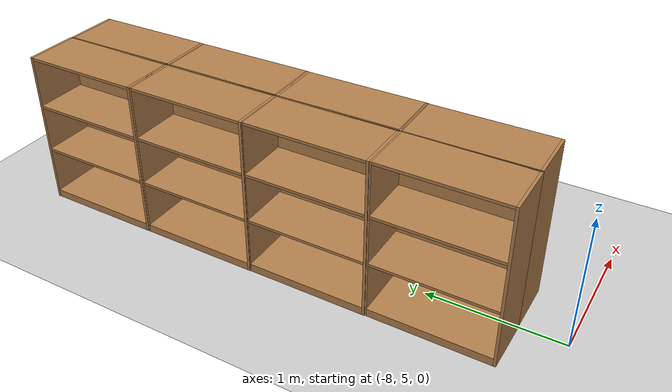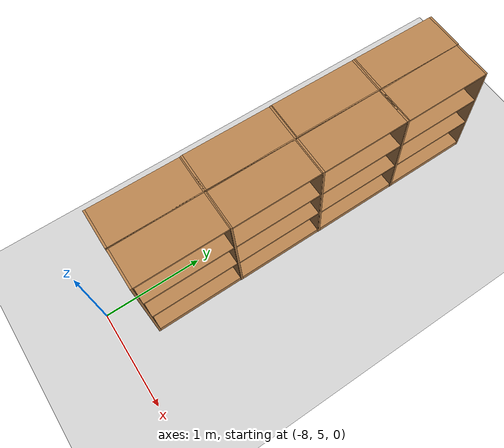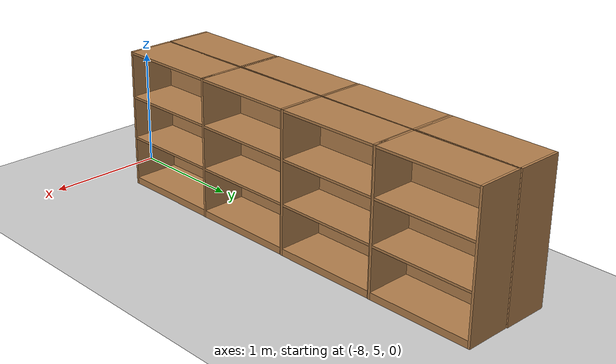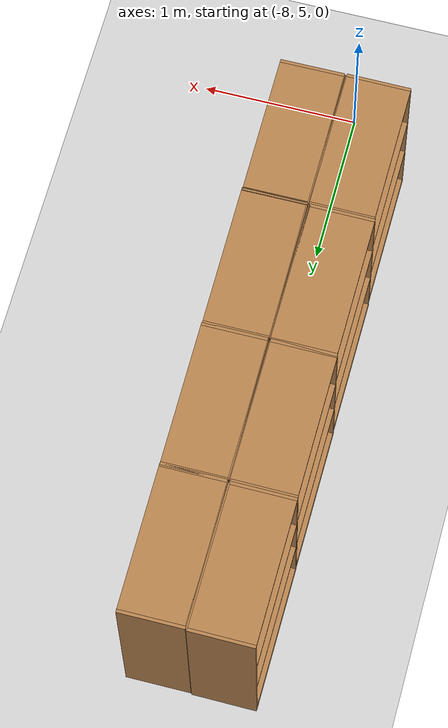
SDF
<sdf version="1.7">
 <world name="library_world">
  <model name="ground_plane">
   <static>1</static>
   <link name="link">
    <collision name="collision">
     <geometry><plane><normal>0 0 1</normal><size>100 100</size></plane></geometry>
     <surface>
      <contact><collide_bitmask>65535</collide_bitmask></contact>
      <friction><ode><mu>100</mu><mu2>50</mu2></ode></friction>
     </surface>
    </collision>
    <visual name="visual">
     <cast_shadows>0</cast_shadows>
     <geometry><plane><normal>0 0 1</normal><size>100 100</size></plane></geometry>
     <material>
      <script><uri>file://media/materials/scripts/gazebo.material</uri><name>Gazebo/Grey</name></script>
     </material>
    </visual>
   </link>
  </model>
  <model name="bookshelf_0_clone_2_clone">
   <static>1</static>
   <link name="link">
    <inertial><mass>1</mass></inertial>
    <collision name="back">
     <pose>0 0.005 0.6 0 -0 0</pose>
     <geometry><box><size>0.9 0.01 1.2</size></box></geometry>
    </collision>
    <visual name="visual1">
     <pose>0 0.005 0.6 0 -0 0</pose>
     <geometry><box><size>0.9 0.01 1.2</size></box></geometry>
     <material>
      <script><uri>file://media/materials/scripts/gazebo.material</uri><name>Gazebo/Wood</name></script>
     </material>
    </visual>
    <collision name="left_side">
     <pose>0.45 -0.195 0.6 0 -0 0</pose>
     <geometry><box><size>0.02 0.4 1.2</size></box></geometry>
    </collision>
    <visual name="visual2">
     <pose>0.45 -0.195 0.6 0 -0 0</pose>
     <geometry><box><size>0.02 0.4 1.2</size></box></geometry>
     <material>
      <script><uri>file://media/materials/scripts/gazebo.material</uri><name>Gazebo/Wood</name></script>
     </material>
    </visual>
    <collision name="right_side">
     <pose>-0.45 -0.195 0.6 0 -0 0</pose>
     <geometry><box><size>0.02 0.4 1.2</size></box></geometry>
    </collision>
    <visual name="visual3">
     <pose>-0.45 -0.195 0.6 0 -0 0</pose>
     <geometry><box><size>0.02 0.4 1.2</size></box></geometry>
     <material>
      <script><uri>file://media/materials/scripts/gazebo.material</uri><name>Gazebo/Wood</name></script>
     </material>
    </visual>
    <collision name="bottom">
     <pose>0 -0.195 0.03 0 -0 0</pose>
     <geometry><box><size>0.88 0.4 0.06</size></box></geometry>
    </collision>
    <visual name="visual4">
     <pose>0 -0.195 0.03 0 -0 0</pose>
     <geometry><box><size>0.88 0.4 0.06</size></box></geometry>
     <material>
      <script><uri>file://media/materials/scripts/gazebo.material</uri><name>Gazebo/Wood</name></script>
     </material>
    </visual>
    <collision name="top">
     <pose>0 -0.195 1.19 0 -0 0</pose>
     <geometry><box><size>0.88 0.4 0.02</size></box></geometry>
    </collision>
    <visual name="visual5">
     <pose>0 -0.195 1.19 0 -0 0</pose>
     <geometry><box><size>0.88 0.4 0.02</size></box></geometry>
     <material>
      <script><uri>file://media/materials/scripts/gazebo.material</uri><name>Gazebo/Wood</name></script>
     </material>
    </visual>
    <collision name="low_shelf">
     <pose>0 -0.195 0.43 0 -0 0</pose>
     <geometry><box><size>0.88 0.4 0.02</size></box></geometry>
    </collision>
    <visual name="visual6">
     <pose>0 -0.195 0.43 0 -0 0</pose>
     <geometry><box><size>0.88 0.4 0.02</size></box></geometry>
     <material>
      <script><uri>file://media/materials/scripts/gazebo.material</uri><name>Gazebo/Wood</name></script>
     </material>
    </visual>
    <collision name="high_shelf">
     <pose>0 -0.195 0.8 0 -0 0</pose>
     <geometry><box><size>0.88 0.4 0.02</size></box></geometry>
    </collision>
    <visual name="visual7">
     <pose>0 -0.195 0.8 0 -0 0</pose>
     <geometry><box><size>0.88 0.4 0.02</size></box></geometry>
     <material>
      <script><uri>file://media/materials/scripts/gazebo.material</uri><name>Gazebo/Wood</name></script>
     </material>
    </visual>
   </link>
   <pose>-7.9828 8.52336 0 0 -0 1.57381</pose>
  </model>
  <model name="bookshelf_0_clone_2_clone_0">
   <static>1</static>
   <link name="link">
    <inertial><mass>1</mass></inertial>
    <collision name="back">
     <pose>0 0.005 0.6 0 -0 0</pose>
     <geometry><box><size>0.9 0.01 1.2</size></box></geometry>
    </collision>
    <visual name="visual1">
     <pose>0 0.005 0.6 0 -0 0</pose>
     <geometry><box><size>0.9 0.01 1.2</size></box></geometry>
     <material>
      <script><uri>file://media/materials/scripts/gazebo.material</uri><name>Gazebo/Wood</name></script>
     </material>
    </visual>
    <collision name="left_side">
     <pose>0.45 -0.195 0.6 0 -0 0</pose>
     <geometry><box><size>0.02 0.4 1.2</size></box></geometry>
    </collision>
    <visual name="visual2">
     <pose>0.45 -0.195 0.6 0 -0 0</pose>
     <geometry><box><size>0.02 0.4 1.2</size></box></geometry>
     <material>
      <script><uri>file://media/materials/scripts/gazebo.material</uri><name>Gazebo/Wood</name></script>
     </material>
    </visual>
    <collision name="right_side">
     <pose>-0.45 -0.195 0.6 0 -0 0</pose>
     <geometry><box><size>0.02 0.4 1.2</size></box></geometry>
    </collision>
    <visual name="visual3">
     <pose>-0.45 -0.195 0.6 0 -0 0</pose>
     <geometry><box><size>0.02 0.4 1.2</size></box></geometry>
     <material>
      <script><uri>file://media/materials/scripts/gazebo.material</uri><name>Gazebo/Wood</name></script>
     </material>
    </visual>
    <collision name="bottom">
     <pose>0 -0.195 0.03 0 -0 0</pose>
     <geometry><box><size>0.88 0.4 0.06</size></box></geometry>
    </collision>
    <visual name="visual4">
     <pose>0 -0.195 0.03 0 -0 0</pose>
     <geometry><box><size>0.88 0.4 0.06</size></box></geometry>
     <material>
      <script><uri>file://media/materials/scripts/gazebo.material</uri><name>Gazebo/Wood</name></script>
     </material>
    </visual>
    <collision name="top">
     <pose>0 -0.195 1.19 0 -0 0</pose>
     <geometry><box><size>0.88 0.4 0.02</size></box></geometry>
    </collision>
    <visual name="visual5">
     <pose>0 -0.195 1.19 0 -0 0</pose>
     <geometry><box><size>0.88 0.4 0.02</size></box></geometry>
     <material>
      <script><uri>file://media/materials/scripts/gazebo.material</uri><name>Gazebo/Wood</name></script>
     </material>
    </visual>
    <collision name="low_shelf">
     <pose>0 -0.195 0.43 0 -0 0</pose>
     <geometry><box><size>0.88 0.4 0.02</size></box></geometry>
    </collision>
    <visual name="visual6">
     <pose>0 -0.195 0.43 0 -0 0</pose>
     <geometry><box><size>0.88 0.4 0.02</size></box></geometry>
     <material>
      <script><uri>file://media/materials/scripts/gazebo.material</uri><name>Gazebo/Wood</name></script>
     </material>
    </visual>
    <collision name="high_shelf">
     <pose>0 -0.195 0.8 0 -0 0</pose>
     <geometry><box><size>0.88 0.4 0.02</size></box></geometry>
    </collision>
    <visual name="visual7">
     <pose>0 -0.195 0.8 0 -0 0</pose>
     <geometry><box><size>0.88 0.4 0.02</size></box></geometry>
     <material>
      <script><uri>file://media/materials/scripts/gazebo.material</uri><name>Gazebo/Wood</name></script>
     </material>
    </visual>
   </link>
   <pose>-7.9819 7.61403 0 0 -0 1.57381</pose>
  </model>
  <model name="bookshelf_0_clone_2_clone_1">
   <static>1</static>
   <link name="link">
    <inertial><mass>1</mass></inertial>
    <collision name="back">
     <pose>0 0.005 0.6 0 -0 0</pose>
     <geometry><box><size>0.9 0.01 1.2</size></box></geometry>
    </collision>
    <visual name="visual1">
     <pose>0 0.005 0.6 0 -0 0</pose>
     <geometry><box><size>0.9 0.01 1.2</size></box></geometry>
     <material>
      <script><uri>file://media/materials/scripts/gazebo.material</uri><name>Gazebo/Wood</name></script>
     </material>
    </visual>
    <collision name="left_side">
     <pose>0.45 -0.195 0.6 0 -0 0</pose>
     <geometry><box><size>0.02 0.4 1.2</size></box></geometry>
    </collision>
    <visual name="visual2">
     <pose>0.45 -0.195 0.6 0 -0 0</pose>
     <geometry><box><size>0.02 0.4 1.2</size></box></geometry>
     <material>
      <script><uri>file://media/materials/scripts/gazebo.material</uri><name>Gazebo/Wood</name></script>
     </material>
    </visual>
    <collision name="right_side">
     <pose>-0.45 -0.195 0.6 0 -0 0</pose>
     <geometry><box><size>0.02 0.4 1.2</size></box></geometry>
    </collision>
    <visual name="visual3">
     <pose>-0.45 -0.195 0.6 0 -0 0</pose>
     <geometry><box><size>0.02 0.4 1.2</size></box></geometry>
     <material>
      <script><uri>file://media/materials/scripts/gazebo.material</uri><name>Gazebo/Wood</name></script>
     </material>
    </visual>
    <collision name="bottom">
     <pose>0 -0.195 0.03 0 -0 0</pose>
     <geometry><box><size>0.88 0.4 0.06</size></box></geometry>
    </collision>
    <visual name="visual4">
     <pose>0 -0.195 0.03 0 -0 0</pose>
     <geometry><box><size>0.88 0.4 0.06</size></box></geometry>
     <material>
      <script><uri>file://media/materials/scripts/gazebo.material</uri><name>Gazebo/Wood</name></script>
     </material>
    </visual>
    <collision name="top">
     <pose>0 -0.195 1.19 0 -0 0</pose>
     <geometry><box><size>0.88 0.4 0.02</size></box></geometry>
    </collision>
    <visual name="visual5">
     <pose>0 -0.195 1.19 0 -0 0</pose>
     <geometry><box><size>0.88 0.4 0.02</size></box></geometry>
     <material>
      <script><uri>file://media/materials/scripts/gazebo.material</uri><name>Gazebo/Wood</name></script>
     </material>
    </visual>
    <collision name="low_shelf">
     <pose>0 -0.195 0.43 0 -0 0</pose>
     <geometry><box><size>0.88 0.4 0.02</size></box></geometry>
    </collision>
    <visual name="visual6">
     <pose>0 -0.195 0.43 0 -0 0</pose>
     <geometry><box><size>0.88 0.4 0.02</size></box></geometry>
     <material>
      <script><uri>file://media/materials/scripts/gazebo.material</uri><name>Gazebo/Wood</name></script>
     </material>
    </visual>
    <collision name="high_shelf">
     <pose>0 -0.195 0.8 0 -0 0</pose>
     <geometry><box><size>0.88 0.4 0.02</size></box></geometry>
    </collision>
    <visual name="visual7">
     <pose>0 -0.195 0.8 0 -0 0</pose>
     <geometry><box><size>0.88 0.4 0.02</size></box></geometry>
     <material>
      <script><uri>file://media/materials/scripts/gazebo.material</uri><name>Gazebo/Wood</name></script>
     </material>
    </visual>
   </link>
   <pose>-7.98238 6.70319 0 0 -0 1.57381</pose>
  </model>
  <model name="bookshelf_0_clone_2_clone_2">
   <static>1</static>
   <link name="link">
    <inertial><mass>1</mass></inertial>
    <collision name="back">
     <pose>0 0.005 0.6 0 -0 0</pose>
     <geometry><box><size>0.9 0.01 1.2</size></box></geometry>
    </collision>
    <visual name="visual1">
     <pose>0 0.005 0.6 0 -0 0</pose>
     <geometry><box><size>0.9 0.01 1.2</size></box></geometry>
     <material>
      <script><uri>file://media/materials/scripts/gazebo.material</uri><name>Gazebo/Wood</name></script>
     </material>
    </visual>
    <collision name="left_side">
     <pose>0.45 -0.195 0.6 0 -0 0</pose>
     <geometry><box><size>0.02 0.4 1.2</size></box></geometry>
    </collision>
    <visual name="visual2">
     <pose>0.45 -0.195 0.6 0 -0 0</pose>
     <geometry><box><size>0.02 0.4 1.2</size></box></geometry>
     <material>
      <script><uri>file://media/materials/scripts/gazebo.material</uri><name>Gazebo/Wood</name></script>
     </material>
    </visual>
    <collision name="right_side">
     <pose>-0.45 -0.195 0.6 0 -0 0</pose>
     <geometry><box><size>0.02 0.4 1.2</size></box></geometry>
    </collision>
    <visual name="visual3">
     <pose>-0.45 -0.195 0.6 0 -0 0</pose>
     <geometry><box><size>0.02 0.4 1.2</size></box></geometry>
     <material>
      <script><uri>file://media/materials/scripts/gazebo.material</uri><name>Gazebo/Wood</name></script>
     </material>
    </visual>
    <collision name="bottom">
     <pose>0 -0.195 0.03 0 -0 0</pose>
     <geometry><box><size>0.88 0.4 0.06</size></box></geometry>
    </collision>
    <visual name="visual4">
     <pose>0 -0.195 0.03 0 -0 0</pose>
     <geometry><box><size>0.88 0.4 0.06</size></box></geometry>
     <material>
      <script><uri>file://media/materials/scripts/gazebo.material</uri><name>Gazebo/Wood</name></script>
     </material>
    </visual>
    <collision name="top">
     <pose>0 -0.195 1.19 0 -0 0</pose>
     <geometry><box><size>0.88 0.4 0.02</size></box></geometry>
    </collision>
    <visual name="visual5">
     <pose>0 -0.195 1.19 0 -0 0</pose>
     <geometry><box><size>0.88 0.4 0.02</size></box></geometry>
     <material>
      <script><uri>file://media/materials/scripts/gazebo.material</uri><name>Gazebo/Wood</name></script>
     </material>
    </visual>
    <collision name="low_shelf">
     <pose>0 -0.195 0.43 0 -0 0</pose>
     <geometry><box><size>0.88 0.4 0.02</size></box></geometry>
    </collision>
    <visual name="visual6">
     <pose>0 -0.195 0.43 0 -0 0</pose>
     <geometry><box><size>0.88 0.4 0.02</size></box></geometry>
     <material>
      <script><uri>file://media/materials/scripts/gazebo.material</uri><name>Gazebo/Wood</name></script>
     </material>
    </visual>
    <collision name="high_shelf">
     <pose>0 -0.195 0.8 0 -0 0</pose>
     <geometry><box><size>0.88 0.4 0.02</size></box></geometry>
    </collision>
    <visual name="visual7">
     <pose>0 -0.195 0.8 0 -0 0</pose>
     <geometry><box><size>0.88 0.4 0.02</size></box></geometry>
     <material>
      <script><uri>file://media/materials/scripts/gazebo.material</uri><name>Gazebo/Wood</name></script>
     </material>
    </visual>
   </link>
   <pose>-7.9838 5.79924 0 0 -0 1.57381</pose>
  </model>
  <model name="bookshelf_0_clone_8_clone">
   <static>1</static>
   <link name="link">
    <inertial><mass>1</mass></inertial>
    <collision name="back">
     <pose>0 0.005 0.6 0 -0 0</pose>
     <geometry><box><size>0.9 0.01 1.2</size></box></geometry>
    </collision>
    <visual name="visual1">
     <pose>0 0.005 0.6 0 -0 0</pose>
     <geometry><box><size>0.9 0.01 1.2</size></box></geometry>
     <material>
      <script><uri>file://media/materials/scripts/gazebo.material</uri><name>Gazebo/Wood</name></script>
     </material>
    </visual>
    <collision name="left_side">
     <pose>0.45 -0.195 0.6 0 -0 0</pose>
     <geometry><box><size>0.02 0.4 1.2</size></box></geometry>
    </collision>
    <visual name="visual2">
     <pose>0.45 -0.195 0.6 0 -0 0</pose>
     <geometry><box><size>0.02 0.4 1.2</size></box></geometry>
     <material>
      <script><uri>file://media/materials/scripts/gazebo.material</uri><name>Gazebo/Wood</name></script>
     </material>
    </visual>
    <collision name="right_side">
     <pose>-0.45 -0.195 0.6 0 -0 0</pose>
     <geometry><box><size>0.02 0.4 1.2</size></box></geometry>
    </collision>
    <visual name="visual3">
     <pose>-0.45 -0.195 0.6 0 -0 0</pose>
     <geometry><box><size>0.02 0.4 1.2</size></box></geometry>
     <material>
      <script><uri>file://media/materials/scripts/gazebo.material</uri><name>Gazebo/Wood</name></script>
     </material>
    </visual>
    <collision name="bottom">
     <pose>0 -0.195 0.03 0 -0 0</pose>
     <geometry><box><size>0.88 0.4 0.06</size></box></geometry>
    </collision>
    <visual name="visual4">
     <pose>0 -0.195 0.03 0 -0 0</pose>
     <geometry><box><size>0.88 0.4 0.06</size></box></geometry>
     <material>
      <script><uri>file://media/materials/scripts/gazebo.material</uri><name>Gazebo/Wood</name></script>
     </material>
    </visual>
    <collision name="top">
     <pose>0 -0.195 1.19 0 -0 0</pose>
     <geometry><box><size>0.88 0.4 0.02</size></box></geometry>
    </collision>
    <visual name="visual5">
     <pose>0 -0.195 1.19 0 -0 0</pose>
     <geometry><box><size>0.88 0.4 0.02</size></box></geometry>
     <material>
      <script><uri>file://media/materials/scripts/gazebo.material</uri><name>Gazebo/Wood</name></script>
     </material>
    </visual>
    <collision name="low_shelf">
     <pose>0 -0.195 0.43 0 -0 0</pose>
     <geometry><box><size>0.88 0.4 0.02</size></box></geometry>
    </collision>
    <visual name="visual6">
     <pose>0 -0.195 0.43 0 -0 0</pose>
     <geometry><box><size>0.88 0.4 0.02</size></box></geometry>
     <material>
      <script><uri>file://media/materials/scripts/gazebo.material</uri><name>Gazebo/Wood</name></script>
     </material>
    </visual>
    <collision name="high_shelf">
     <pose>0 -0.195 0.8 0 -0 0</pose>
     <geometry><box><size>0.88 0.4 0.02</size></box></geometry>
    </collision>
    <visual name="visual7">
     <pose>0 -0.195 0.8 0 -0 0</pose>
     <geometry><box><size>0.88 0.4 0.02</size></box></geometry>
     <material>
      <script><uri>file://media/materials/scripts/gazebo.material</uri><name>Gazebo/Wood</name></script>
     </material>
    </visual>
   </link>
   <pose>-8.00188 8.53017 0 0 0 -1.57537</pose>
  </model>
  <model name="bookshelf_0_clone_8_clone_0">
   <static>1</static>
   <link name="link">
    <inertial><mass>1</mass></inertial>
    <collision name="back">
     <pose>0 0.005 0.6 0 -0 0</pose>
     <geometry><box><size>0.9 0.01 1.2</size></box></geometry>
    </collision>
    <visual name="visual1">
     <pose>0 0.005 0.6 0 -0 0</pose>
     <geometry><box><size>0.9 0.01 1.2</size></box></geometry>
     <material>
      <script><uri>file://media/materials/scripts/gazebo.material</uri><name>Gazebo/Wood</name></script>
     </material>
    </visual>
    <collision name="left_side">
     <pose>0.45 -0.195 0.6 0 -0 0</pose>
     <geometry><box><size>0.02 0.4 1.2</size></box></geometry>
    </collision>
    <visual name="visual2">
     <pose>0.45 -0.195 0.6 0 -0 0</pose>
     <geometry><box><size>0.02 0.4 1.2</size></box></geometry>
     <material>
      <script><uri>file://media/materials/scripts/gazebo.material</uri><name>Gazebo/Wood</name></script>
     </material>
    </visual>
    <collision name="right_side">
     <pose>-0.45 -0.195 0.6 0 -0 0</pose>
     <geometry><box><size>0.02 0.4 1.2</size></box></geometry>
    </collision>
    <visual name="visual3">
     <pose>-0.45 -0.195 0.6 0 -0 0</pose>
     <geometry><box><size>0.02 0.4 1.2</size></box></geometry>
     <material>
      <script><uri>file://media/materials/scripts/gazebo.material</uri><name>Gazebo/Wood</name></script>
     </material>
    </visual>
    <collision name="bottom">
     <pose>0 -0.195 0.03 0 -0 0</pose>
     <geometry><box><size>0.88 0.4 0.06</size></box></geometry>
    </collision>
    <visual name="visual4">
     <pose>0 -0.195 0.03 0 -0 0</pose>
     <geometry><box><size>0.88 0.4 0.06</size></box></geometry>
     <material>
      <script><uri>file://media/materials/scripts/gazebo.material</uri><name>Gazebo/Wood</name></script>
     </material>
    </visual>
    <collision name="top">
     <pose>0 -0.195 1.19 0 -0 0</pose>
     <geometry><box><size>0.88 0.4 0.02</size></box></geometry>
    </collision>
    <visual name="visual5">
     <pose>0 -0.195 1.19 0 -0 0</pose>
     <geometry><box><size>0.88 0.4 0.02</size></box></geometry>
     <material>
      <script><uri>file://media/materials/scripts/gazebo.material</uri><name>Gazebo/Wood</name></script>
     </material>
    </visual>
    <collision name="low_shelf">
     <pose>0 -0.195 0.43 0 -0 0</pose>
     <geometry><box><size>0.88 0.4 0.02</size></box></geometry>
    </collision>
    <visual name="visual6">
     <pose>0 -0.195 0.43 0 -0 0</pose>
     <geometry><box><size>0.88 0.4 0.02</size></box></geometry>
     <material>
      <script><uri>file://media/materials/scripts/gazebo.material</uri><name>Gazebo/Wood</name></script>
     </material>
    </visual>
    <collision name="high_shelf">
     <pose>0 -0.195 0.8 0 -0 0</pose>
     <geometry><box><size>0.88 0.4 0.02</size></box></geometry>
    </collision>
    <visual name="visual7">
     <pose>0 -0.195 0.8 0 -0 0</pose>
     <geometry><box><size>0.88 0.4 0.02</size></box></geometry>
     <material>
      <script><uri>file://media/materials/scripts/gazebo.material</uri><name>Gazebo/Wood</name></script>
     </material>
    </visual>
   </link>
   <pose>-8.00429 7.61626 0 0 0 -1.57537</pose>
  </model>
  <model name="bookshelf_0_clone_8_clone_1">
   <static>1</static>
   <link name="link">
    <inertial><mass>1</mass></inertial>
    <collision name="back">
     <pose>0 0.005 0.6 0 -0 0</pose>
     <geometry><box><size>0.9 0.01 1.2</size></box></geometry>
    </collision>
    <visual name="visual1">
     <pose>0 0.005 0.6 0 -0 0</pose>
     <geometry><box><size>0.9 0.01 1.2</size></box></geometry>
     <material>
      <script><uri>file://media/materials/scripts/gazebo.material</uri><name>Gazebo/Wood</name></script>
     </material>
    </visual>
    <collision name="left_side">
     <pose>0.45 -0.195 0.6 0 -0 0</pose>
     <geometry><box><size>0.02 0.4 1.2</size></box></geometry>
    </collision>
    <visual name="visual2">
     <pose>0.45 -0.195 0.6 0 -0 0</pose>
     <geometry><box><size>0.02 0.4 1.2</size></box></geometry>
     <material>
      <script><uri>file://media/materials/scripts/gazebo.material</uri><name>Gazebo/Wood</name></script>
     </material>
    </visual>
    <collision name="right_side">
     <pose>-0.45 -0.195 0.6 0 -0 0</pose>
     <geometry><box><size>0.02 0.4 1.2</size></box></geometry>
    </collision>
    <visual name="visual3">
     <pose>-0.45 -0.195 0.6 0 -0 0</pose>
     <geometry><box><size>0.02 0.4 1.2</size></box></geometry>
     <material>
      <script><uri>file://media/materials/scripts/gazebo.material</uri><name>Gazebo/Wood</name></script>
     </material>
    </visual>
    <collision name="bottom">
     <pose>0 -0.195 0.03 0 -0 0</pose>
     <geometry><box><size>0.88 0.4 0.06</size></box></geometry>
    </collision>
    <visual name="visual4">
     <pose>0 -0.195 0.03 0 -0 0</pose>
     <geometry><box><size>0.88 0.4 0.06</size></box></geometry>
     <material>
      <script><uri>file://media/materials/scripts/gazebo.material</uri><name>Gazebo/Wood</name></script>
     </material>
    </visual>
    <collision name="top">
     <pose>0 -0.195 1.19 0 -0 0</pose>
     <geometry><box><size>0.88 0.4 0.02</size></box></geometry>
    </collision>
    <visual name="visual5">
     <pose>0 -0.195 1.19 0 -0 0</pose>
     <geometry><box><size>0.88 0.4 0.02</size></box></geometry>
     <material>
      <script><uri>file://media/materials/scripts/gazebo.material</uri><name>Gazebo/Wood</name></script>
     </material>
    </visual>
    <collision name="low_shelf">
     <pose>0 -0.195 0.43 0 -0 0</pose>
     <geometry><box><size>0.88 0.4 0.02</size></box></geometry>
    </collision>
    <visual name="visual6">
     <pose>0 -0.195 0.43 0 -0 0</pose>
     <geometry><box><size>0.88 0.4 0.02</size></box></geometry>
     <material>
      <script><uri>file://media/materials/scripts/gazebo.material</uri><name>Gazebo/Wood</name></script>
     </material>
    </visual>
    <collision name="high_shelf">
     <pose>0 -0.195 0.8 0 -0 0</pose>
     <geometry><box><size>0.88 0.4 0.02</size></box></geometry>
    </collision>
    <visual name="visual7">
     <pose>0 -0.195 0.8 0 -0 0</pose>
     <geometry><box><size>0.88 0.4 0.02</size></box></geometry>
     <material>
      <script><uri>file://media/materials/scripts/gazebo.material</uri><name>Gazebo/Wood</name></script>
     </material>
    </visual>
   </link>
   <pose>-8.00535 6.7085 0 0 0 -1.57537</pose>
  </model>
  <model name="bookshelf_0_clone_8_clone_2">
   <static>1</static>
   <link name="link">
    <inertial><mass>1</mass></inertial>
    <collision name="back">
     <pose>0 0.005 0.6 0 -0 0</pose>
     <geometry><box><size>0.9 0.01 1.2</size></box></geometry>
    </collision>
    <visual name="visual1">
     <pose>0 0.005 0.6 0 -0 0</pose>
     <geometry><box><size>0.9 0.01 1.2</size></box></geometry>
     <material>
      <script><uri>file://media/materials/scripts/gazebo.material</uri><name>Gazebo/Wood</name></script>
     </material>
    </visual>
    <collision name="left_side">
     <pose>0.45 -0.195 0.6 0 -0 0</pose>
     <geometry><box><size>0.02 0.4 1.2</size></box></geometry>
    </collision>
    <visual name="visual2">
     <pose>0.45 -0.195 0.6 0 -0 0</pose>
     <geometry><box><size>0.02 0.4 1.2</size></box></geometry>
     <material>
      <script><uri>file://media/materials/scripts/gazebo.material</uri><name>Gazebo/Wood</name></script>
     </material>
    </visual>
    <collision name="right_side">
     <pose>-0.45 -0.195 0.6 0 -0 0</pose>
     <geometry><box><size>0.02 0.4 1.2</size></box></geometry>
    </collision>
    <visual name="visual3">
     <pose>-0.45 -0.195 0.6 0 -0 0</pose>
     <geometry><box><size>0.02 0.4 1.2</size></box></geometry>
     <material>
      <script><uri>file://media/materials/scripts/gazebo.material</uri><name>Gazebo/Wood</name></script>
     </material>
    </visual>
    <collision name="bottom">
     <pose>0 -0.195 0.03 0 -0 0</pose>
     <geometry><box><size>0.88 0.4 0.06</size></box></geometry>
    </collision>
    <visual name="visual4">
     <pose>0 -0.195 0.03 0 -0 0</pose>
     <geometry><box><size>0.88 0.4 0.06</size></box></geometry>
     <material>
      <script><uri>file://media/materials/scripts/gazebo.material</uri><name>Gazebo/Wood</name></script>
     </material>
    </visual>
    <collision name="top">
     <pose>0 -0.195 1.19 0 -0 0</pose>
     <geometry><box><size>0.88 0.4 0.02</size></box></geometry>
    </collision>
    <visual name="visual5">
     <pose>0 -0.195 1.19 0 -0 0</pose>
     <geometry><box><size>0.88 0.4 0.02</size></box></geometry>
     <material>
      <script><uri>file://media/materials/scripts/gazebo.material</uri><name>Gazebo/Wood</name></script>
     </material>
    </visual>
    <collision name="low_shelf">
     <pose>0 -0.195 0.43 0 -0 0</pose>
     <geometry><box><size>0.88 0.4 0.02</size></box></geometry>
    </collision>
    <visual name="visual6">
     <pose>0 -0.195 0.43 0 -0 0</pose>
     <geometry><box><size>0.88 0.4 0.02</size></box></geometry>
     <material>
      <script><uri>file://media/materials/scripts/gazebo.material</uri><name>Gazebo/Wood</name></script>
     </material>
    </visual>
    <collision name="high_shelf">
     <pose>0 -0.195 0.8 0 -0 0</pose>
     <geometry><box><size>0.88 0.4 0.02</size></box></geometry>
    </collision>
    <visual name="visual7">
     <pose>0 -0.195 0.8 0 -0 0</pose>
     <geometry><box><size>0.88 0.4 0.02</size></box></geometry>
     <material>
      <script><uri>file://media/materials/scripts/gazebo.material</uri><name>Gazebo/Wood</name></script>
     </material>
    </visual>
   </link>
   <pose>-8.00488 5.79635 0 0 0 -1.57537</pose>
  </model>
  <model name="book_2_clone_clone">
   <static>1</static>
   <link name="link">
    <visual name="visual"><geometry><box><size>0.221094 0.032318 0.244099</size></box></geometry></visual>
   </link>
   <pose>-7.88848 7.08729 0.562007 0 -0 0</pose>
  </model>
 </world>
</sdf>
